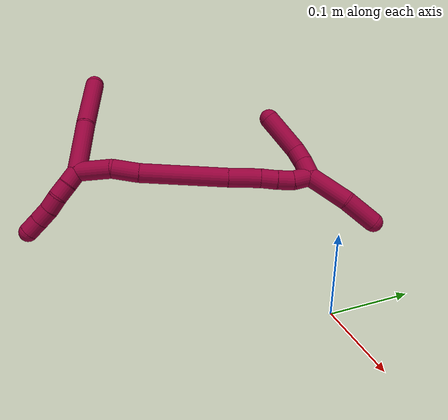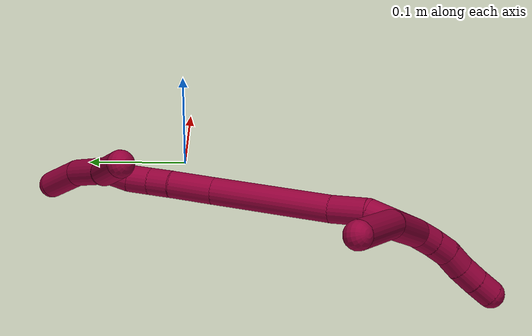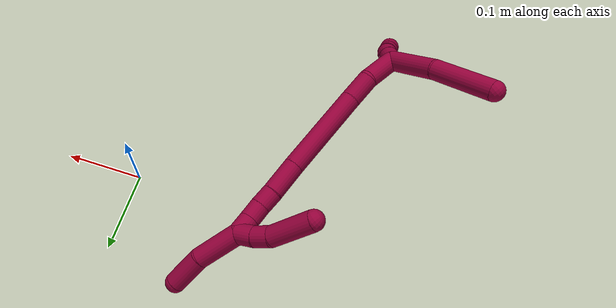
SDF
<sdf version="1.7">
 <world name="default">
  <model name="8">
   <static>0</static>
   <link name="8">
    <collision name="collision-cylinder-e_1_2_8">
     <pose>-0.002933 0.030892 0.017082 -1.06569 -0.082911 0.048914</pose>
     <geometry><cylinder><radius>0.0125</radius><length>0.070843</length></cylinder></geometry>
     <surface>
      <friction><ode><mu>1.16</mu><mu2>1.16</mu2><slip1>0</slip1><slip2>0</slip2></ode></friction>
      <contact><ode><kp>1e+06</kp><kd>1</kd><max_vel>0</max_vel><min_depth>0.001</min_depth></ode></contact>
     </surface>
    </collision>
    <visual name="visual-cylinder-e_1_2_8">
     <pose>-0.002933 0.030892 0.017082 -1.06569 -0.082911 0.048914</pose>
     <geometry><cylinder><radius>0.0125</radius><length>0.070843</length></cylinder></geometry>
     <material><ambient>0.584314 0 0.227451 1</ambient></material>
    </visual>
    <collision name="collision-cylinder-e_2_8_6">
     <pose>-0.017527 0.095219 0.051842 -1.08441 -0.299032 0.181005</pose>
     <geometry><cylinder><radius>0.0125</radius><length>0.079157</length></cylinder></geometry>
     <surface>
      <friction><ode><mu>1.16</mu><mu2>1.16</mu2><slip1>0</slip1><slip2>0</slip2></ode></friction>
      <contact><ode><kp>1e+06</kp><kd>1</kd><max_vel>0</max_vel><min_depth>0.001</min_depth></ode></contact>
     </surface>
    </collision>
    <visual name="visual-cylinder-e_2_8_6">
     <pose>-0.017527 0.095219 0.051842 -1.08441 -0.299032 0.181005</pose>
     <geometry><cylinder><radius>0.0125</radius><length>0.079157</length></cylinder></geometry>
     <material><ambient>0.584314 0 0.227451 1</ambient></material>
    </visual>
    <collision name="collision-cylinder-e_1_2_9">
     <pose>-0.002421 -0.009701 -0.000162 1.58754 -0.24453 -0.248618</pose>
     <geometry><cylinder><radius>0.0125</radius><length>0.02</length></cylinder></geometry>
     <surface>
      <friction><ode><mu>1.16</mu><mu2>1.16</mu2><slip1>0</slip1><slip2>0</slip2></ode></friction>
      <contact><ode><kp>1e+06</kp><kd>1</kd><max_vel>0</max_vel><min_depth>0.001</min_depth></ode></contact>
     </surface>
    </collision>
    <visual name="visual-cylinder-e_1_2_9">
     <pose>-0.002421 -0.009701 -0.000162 1.58754 -0.24453 -0.248618</pose>
     <geometry><cylinder><radius>0.0125</radius><length>0.02</length></cylinder></geometry>
     <material><ambient>0.584314 0 0.227451 1</ambient></material>
    </visual>
    <collision name="collision-cylinder-e_2_9_10">
     <pose>-0.008119 -0.028849 -0.000178 1.55529 -0.333819 -0.328774</pose>
     <geometry><cylinder><radius>0.0125</radius><length>0.02</length></cylinder></geometry>
     <surface>
      <friction><ode><mu>1.16</mu><mu2>1.16</mu2><slip1>0</slip1><slip2>0</slip2></ode></friction>
      <contact><ode><kp>1e+06</kp><kd>1</kd><max_vel>0</max_vel><min_depth>0.001</min_depth></ode></contact>
     </surface>
    </collision>
    <visual name="visual-cylinder-e_2_9_10">
     <pose>-0.008119 -0.028849 -0.000178 1.55529 -0.333819 -0.328774</pose>
     <geometry><cylinder><radius>0.0125</radius><length>0.02</length></cylinder></geometry>
     <material><ambient>0.584314 0 0.227451 1</ambient></material>
    </visual>
    <collision name="collision-cylinder-e_3_10_11">
     <pose>-0.01671 -0.046767 -6.8e-05 1.57509 -0.560363 -0.562651</pose>
     <geometry><cylinder><radius>0.0125</radius><length>0.02</length></cylinder></geometry>
     <surface>
      <friction><ode><mu>1.16</mu><mu2>1.16</mu2><slip1>0</slip1><slip2>0</slip2></ode></friction>
      <contact><ode><kp>1e+06</kp><kd>1</kd><max_vel>0</max_vel><min_depth>0.001</min_depth></ode></contact>
     </surface>
    </collision>
    <visual name="visual-cylinder-e_3_10_11">
     <pose>-0.01671 -0.046767 -6.8e-05 1.57509 -0.560363 -0.562651</pose>
     <geometry><cylinder><radius>0.0125</radius><length>0.02</length></cylinder></geometry>
     <material><ambient>0.584314 0 0.227451 1</ambient></material>
    </visual>
    <collision name="collision-cylinder-e_4_11_12">
     <pose>-0.027045 -0.063795 0.001144 1.42589 -0.525908 -0.457367</pose>
     <geometry><cylinder><radius>0.0125</radius><length>0.02</length></cylinder></geometry>
     <surface>
      <friction><ode><mu>1.16</mu><mu2>1.16</mu2><slip1>0</slip1><slip2>0</slip2></ode></friction>
      <contact><ode><kp>1e+06</kp><kd>1</kd><max_vel>0</max_vel><min_depth>0.001</min_depth></ode></contact>
     </surface>
    </collision>
    <visual name="visual-cylinder-e_4_11_12">
     <pose>-0.027045 -0.063795 0.001144 1.42589 -0.525908 -0.457367</pose>
     <geometry><cylinder><radius>0.0125</radius><length>0.02</length></cylinder></geometry>
     <material><ambient>0.584314 0 0.227451 1</ambient></material>
    </visual>
    <collision name="collision-cylinder-e_5_12_5">
     <pose>-0.036792 -0.081056 0.003778 1.41294 -0.492322 -0.422453</pose>
     <geometry><cylinder><radius>0.0125</radius><length>0.02</length></cylinder></geometry>
     <surface>
      <friction><ode><mu>1.16</mu><mu2>1.16</mu2><slip1>0</slip1><slip2>0</slip2></ode></friction>
      <contact><ode><kp>1e+06</kp><kd>1</kd><max_vel>0</max_vel><min_depth>0.001</min_depth></ode></contact>
     </surface>
    </collision>
    <visual name="visual-cylinder-e_5_12_5">
     <pose>-0.036792 -0.081056 0.003778 1.41294 -0.492322 -0.422453</pose>
     <geometry><cylinder><radius>0.0125</radius><length>0.02</length></cylinder></geometry>
     <material><ambient>0.584314 0 0.227451 1</ambient></material>
    </visual>
    <collision name="collision-cylinder-e_1_2_13">
     <pose>0.008941 0.012349 -0.017537 -2.52807 0.394962 -1.12677</pose>
     <geometry><cylinder><radius>0.0125</radius><length>0.046477</length></cylinder></geometry>
     <surface>
      <friction><ode><mu>1.16</mu><mu2>1.16</mu2><slip1>0</slip1><slip2>0</slip2></ode></friction>
      <contact><ode><kp>1e+06</kp><kd>1</kd><max_vel>0</max_vel><min_depth>0.001</min_depth></ode></contact>
     </surface>
    </collision>
    <visual name="visual-cylinder-e_1_2_13">
     <pose>0.008941 0.012349 -0.017537 -2.52807 0.394962 -1.12677</pose>
     <geometry><cylinder><radius>0.0125</radius><length>0.046477</length></cylinder></geometry>
     <material><ambient>0.584314 0 0.227451 1</ambient></material>
    </visual>
    <collision name="collision-cylinder-e_2_13_14">
     <pose>0.019659 0.032531 -0.050468 -2.67093 0.102473 -0.4214</pose>
     <geometry><cylinder><radius>0.0125</radius><length>0.034724</length></cylinder></geometry>
     <surface>
      <friction><ode><mu>1.16</mu><mu2>1.16</mu2><slip1>0</slip1><slip2>0</slip2></ode></friction>
      <contact><ode><kp>1e+06</kp><kd>1</kd><max_vel>0</max_vel><min_depth>0.001</min_depth></ode></contact>
     </surface>
    </collision>
    <visual name="visual-cylinder-e_2_13_14">
     <pose>0.019659 0.032531 -0.050468 -2.67093 0.102473 -0.4214</pose>
     <geometry><cylinder><radius>0.0125</radius><length>0.034724</length></cylinder></geometry>
     <material><ambient>0.584314 0 0.227451 1</ambient></material>
    </visual>
    <collision name="collision-cylinder-e_3_14_15">
     <pose>0.029994 0.070258 -0.112928 -2.57572 0.152315 -0.51333</pose>
     <geometry><cylinder><radius>0.0125</radius><length>0.112824</length></cylinder></geometry>
     <surface>
      <friction><ode><mu>1.16</mu><mu2>1.16</mu2><slip1>0</slip1><slip2>0</slip2></ode></friction>
      <contact><ode><kp>1e+06</kp><kd>1</kd><max_vel>0</max_vel><min_depth>0.001</min_depth></ode></contact>
     </surface>
    </collision>
    <visual name="visual-cylinder-e_3_14_15">
     <pose>0.029994 0.070258 -0.112928 -2.57572 0.152315 -0.51333</pose>
     <geometry><cylinder><radius>0.0125</radius><length>0.112824</length></cylinder></geometry>
     <material><ambient>0.584314 0 0.227451 1</ambient></material>
    </visual>
    <collision name="collision-cylinder-e_4_15_16">
     <pose>0.041657 0.111814 -0.176888 -2.53741 0.150082 -0.473466</pose>
     <geometry><cylinder><radius>0.0125</radius><length>0.041518</length></cylinder></geometry>
     <surface>
      <friction><ode><mu>1.16</mu><mu2>1.16</mu2><slip1>0</slip1><slip2>0</slip2></ode></friction>
      <contact><ode><kp>1e+06</kp><kd>1</kd><max_vel>0</max_vel><min_depth>0.001</min_depth></ode></contact>
     </surface>
    </collision>
    <visual name="visual-cylinder-e_4_15_16">
     <pose>0.041657 0.111814 -0.176888 -2.53741 0.150082 -0.473466</pose>
     <geometry><cylinder><radius>0.0125</radius><length>0.041518</length></cylinder></geometry>
     <material><ambient>0.584314 0 0.227451 1</ambient></material>
    </visual>
    <collision name="collision-cylinder-e_5_16_17">
     <pose>0.046349 0.128642 -0.203007 -2.63106 0.149007 -0.557181</pose>
     <geometry><cylinder><radius>0.0125</radius><length>0.02139</length></cylinder></geometry>
     <surface>
      <friction><ode><mu>1.16</mu><mu2>1.16</mu2><slip1>0</slip1><slip2>0</slip2></ode></friction>
      <contact><ode><kp>1e+06</kp><kd>1</kd><max_vel>0</max_vel><min_depth>0.001</min_depth></ode></contact>
     </surface>
    </collision>
    <visual name="visual-cylinder-e_5_16_17">
     <pose>0.046349 0.128642 -0.203007 -2.63106 0.149007 -0.557181</pose>
     <geometry><cylinder><radius>0.0125</radius><length>0.02139</length></cylinder></geometry>
     <material><ambient>0.584314 0 0.227451 1</ambient></material>
    </visual>
    <collision name="collision-cylinder-e_6_17_18">
     <pose>0.049446 0.139764 -0.221025 -2.54623 0.141208 -0.45311</pose>
     <geometry><cylinder><radius>0.0125</radius><length>0.021445</length></cylinder></geometry>
     <surface>
      <friction><ode><mu>1.16</mu><mu2>1.16</mu2><slip1>0</slip1><slip2>0</slip2></ode></friction>
      <contact><ode><kp>1e+06</kp><kd>1</kd><max_vel>0</max_vel><min_depth>0.001</min_depth></ode></contact>
     </surface>
    </collision>
    <visual name="visual-cylinder-e_6_17_18">
     <pose>0.049446 0.139764 -0.221025 -2.54623 0.141208 -0.45311</pose>
     <geometry><cylinder><radius>0.0125</radius><length>0.021445</length></cylinder></geometry>
     <material><ambient>0.584314 0 0.227451 1</ambient></material>
    </visual>
    <collision name="collision-cylinder-e_7_18_1">
     <pose>0.054099 0.15336 -0.236783 -2.31015 0.295145 -0.649626</pose>
     <geometry><cylinder><radius>0.0125</radius><length>0.021622</length></cylinder></geometry>
     <surface>
      <friction><ode><mu>1.16</mu><mu2>1.16</mu2><slip1>0</slip1><slip2>0</slip2></ode></friction>
      <contact><ode><kp>1e+06</kp><kd>1</kd><max_vel>0</max_vel><min_depth>0.001</min_depth></ode></contact>
     </surface>
    </collision>
    <visual name="visual-cylinder-e_7_18_1">
     <pose>0.054099 0.15336 -0.236783 -2.31015 0.295145 -0.649626</pose>
     <geometry><cylinder><radius>0.0125</radius><length>0.021622</length></cylinder></geometry>
     <material><ambient>0.584314 0 0.227451 1</ambient></material>
    </visual>
    <collision name="collision-cylinder-e_1_1_19">
     <pose>0.054079 0.168459 -0.235431 -0.730601 -0.276049 0.106155</pose>
     <geometry><cylinder><radius>0.0125</radius><length>0.023226</length></cylinder></geometry>
     <surface>
      <friction><ode><mu>1.16</mu><mu2>1.16</mu2><slip1>0</slip1><slip2>0</slip2></ode></friction>
      <contact><ode><kp>1e+06</kp><kd>1</kd><max_vel>0</max_vel><min_depth>0.001</min_depth></ode></contact>
     </surface>
    </collision>
    <visual name="visual-cylinder-e_1_1_19">
     <pose>0.054079 0.168459 -0.235431 -0.730601 -0.276049 0.106155</pose>
     <geometry><cylinder><radius>0.0125</radius><length>0.023226</length></cylinder></geometry>
     <material><ambient>0.584314 0 0.227451 1</ambient></material>
    </visual>
    <collision name="collision-cylinder-e_2_19_20">
     <pose>0.048699 0.18144 -0.218463 -0.568586 -0.212566 0.062328</pose>
     <geometry><cylinder><radius>0.0125</radius><length>0.020995</length></cylinder></geometry>
     <surface>
      <friction><ode><mu>1.16</mu><mu2>1.16</mu2><slip1>0</slip1><slip2>0</slip2></ode></friction>
      <contact><ode><kp>1e+06</kp><kd>1</kd><max_vel>0</max_vel><min_depth>0.001</min_depth></ode></contact>
     </surface>
    </collision>
    <visual name="visual-cylinder-e_2_19_20">
     <pose>0.048699 0.18144 -0.218463 -0.568586 -0.212566 0.062328</pose>
     <geometry><cylinder><radius>0.0125</radius><length>0.020995</length></cylinder></geometry>
     <material><ambient>0.584314 0 0.227451 1</ambient></material>
    </visual>
    <collision name="collision-cylinder-e_3_20_4">
     <pose>0.045062 0.195721 -0.183375 -0.319788 -0.051046 0.008234</pose>
     <geometry><cylinder><radius>0.0125</radius><length>0.05578</length></cylinder></geometry>
     <surface>
      <friction><ode><mu>1.16</mu><mu2>1.16</mu2><slip1>0</slip1><slip2>0</slip2></ode></friction>
      <contact><ode><kp>1e+06</kp><kd>1</kd><max_vel>0</max_vel><min_depth>0.001</min_depth></ode></contact>
     </surface>
    </collision>
    <visual name="visual-cylinder-e_3_20_4">
     <pose>0.045062 0.195721 -0.183375 -0.319788 -0.051046 0.008234</pose>
     <geometry><cylinder><radius>0.0125</radius><length>0.05578</length></cylinder></geometry>
     <material><ambient>0.584314 0 0.227451 1</ambient></material>
    </visual>
    <collision name="collision-cylinder-e_1_1_21">
     <pose>0.059953 0.160683 -0.271308 3.12997 0.098005 2.9058</pose>
     <geometry><cylinder><radius>0.0125</radius><length>0.055379</length></cylinder></geometry>
     <surface>
      <friction><ode><mu>1.16</mu><mu2>1.16</mu2><slip1>0</slip1><slip2>0</slip2></ode></friction>
      <contact><ode><kp>1e+06</kp><kd>1</kd><max_vel>0</max_vel><min_depth>0.001</min_depth></ode></contact>
     </surface>
    </collision>
    <visual name="visual-cylinder-e_1_1_21">
     <pose>0.059953 0.160683 -0.271308 3.12997 0.098005 2.9058</pose>
     <geometry><cylinder><radius>0.0125</radius><length>0.055379</length></cylinder></geometry>
     <material><ambient>0.584314 0 0.227451 1</ambient></material>
    </visual>
    <collision name="collision-cylinder-e_2_21_3">
     <pose>0.059614 0.160738 -0.320961 -3.12461 -0.13708 2.89549</pose>
     <geometry><cylinder><radius>0.0125</radius><length>0.044621</length></cylinder></geometry>
     <surface>
      <friction><ode><mu>1.16</mu><mu2>1.16</mu2><slip1>0</slip1><slip2>0</slip2></ode></friction>
      <contact><ode><kp>1e+06</kp><kd>1</kd><max_vel>0</max_vel><min_depth>0.001</min_depth></ode></contact>
     </surface>
    </collision>
    <visual name="visual-cylinder-e_2_21_3">
     <pose>0.059614 0.160738 -0.320961 -3.12461 -0.13708 2.89549</pose>
     <geometry><cylinder><radius>0.0125</radius><length>0.044621</length></cylinder></geometry>
     <material><ambient>0.584314 0 0.227451 1</ambient></material>
    </visual>
    <collision name="collision-sphere-3">
     <pose>0.056565 0.161113 -0.343059 0 -0 0</pose>
     <geometry><sphere><radius>0.0125</radius></sphere></geometry>
     <surface>
      <friction><ode><mu>1.16</mu><mu2>1.16</mu2><slip1>0</slip1><slip2>0</slip2></ode></friction>
      <contact><ode><kp>1e+06</kp><kd>1</kd><max_vel>0</max_vel><min_depth>0.001</min_depth></ode></contact>
     </surface>
    </collision>
    <visual name="visual-sphere-3">
     <pose>0.056565 0.161113 -0.343059 0 -0 0</pose>
     <geometry><sphere><radius>0.0125</radius></sphere></geometry>
     <material><ambient>0.584314 0 0.227451 1</ambient></material>
    </visual>
    <collision name="collision-sphere-21">
     <pose>0.062663 0.160363 -0.298863 0 -0 0</pose>
     <geometry><sphere><radius>0.0125</radius></sphere></geometry>
     <surface>
      <friction><ode><mu>1.16</mu><mu2>1.16</mu2><slip1>0</slip1><slip2>0</slip2></ode></friction>
      <contact><ode><kp>1e+06</kp><kd>1</kd><max_vel>0</max_vel><min_depth>0.001</min_depth></ode></contact>
     </surface>
    </collision>
    <visual name="visual-sphere-21">
     <pose>0.062663 0.160363 -0.298863 0 -0 0</pose>
     <geometry><sphere><radius>0.0125</radius></sphere></geometry>
     <material><ambient>0.584314 0 0.227451 1</ambient></material>
    </visual>
    <collision name="collision-sphere-4">
     <pose>0.043639 0.204478 -0.156934 0 -0 0</pose>
     <geometry><sphere><radius>0.0125</radius></sphere></geometry>
     <surface>
      <friction><ode><mu>1.16</mu><mu2>1.16</mu2><slip1>0</slip1><slip2>0</slip2></ode></friction>
      <contact><ode><kp>1e+06</kp><kd>1</kd><max_vel>0</max_vel><min_depth>0.001</min_depth></ode></contact>
     </surface>
    </collision>
    <visual name="visual-sphere-4">
     <pose>0.043639 0.204478 -0.156934 0 -0 0</pose>
     <geometry><sphere><radius>0.0125</radius></sphere></geometry>
     <material><ambient>0.584314 0 0.227451 1</ambient></material>
    </visual>
    <collision name="collision-sphere-20">
     <pose>0.046485 0.186965 -0.209817 0 -0 0</pose>
     <geometry><sphere><radius>0.0125</radius></sphere></geometry>
     <surface>
      <friction><ode><mu>1.16</mu><mu2>1.16</mu2><slip1>0</slip1><slip2>0</slip2></ode></friction>
      <contact><ode><kp>1e+06</kp><kd>1</kd><max_vel>0</max_vel><min_depth>0.001</min_depth></ode></contact>
     </surface>
    </collision>
    <visual name="visual-sphere-20">
     <pose>0.046485 0.186965 -0.209817 0 -0 0</pose>
     <geometry><sphere><radius>0.0125</radius></sphere></geometry>
     <material><ambient>0.584314 0 0.227451 1</ambient></material>
    </visual>
    <collision name="collision-sphere-11">
     <pose>-0.022025 -0.055237 -0.000105 0 -0 0</pose>
     <geometry><sphere><radius>0.0125</radius></sphere></geometry>
     <surface>
      <friction><ode><mu>1.16</mu><mu2>1.16</mu2><slip1>0</slip1><slip2>0</slip2></ode></friction>
      <contact><ode><kp>1e+06</kp><kd>1</kd><max_vel>0</max_vel><min_depth>0.001</min_depth></ode></contact>
     </surface>
    </collision>
    <visual name="visual-sphere-11">
     <pose>-0.022025 -0.055237 -0.000105 0 -0 0</pose>
     <geometry><sphere><radius>0.0125</radius></sphere></geometry>
     <material><ambient>0.584314 0 0.227451 1</ambient></material>
    </visual>
    <collision name="collision-sphere-10">
     <pose>-0.011395 -0.038296 -3.2e-05 0 -0 0</pose>
     <geometry><sphere><radius>0.0125</radius></sphere></geometry>
     <surface>
      <friction><ode><mu>1.16</mu><mu2>1.16</mu2><slip1>0</slip1><slip2>0</slip2></ode></friction>
      <contact><ode><kp>1e+06</kp><kd>1</kd><max_vel>0</max_vel><min_depth>0.001</min_depth></ode></contact>
     </surface>
    </collision>
    <visual name="visual-sphere-10">
     <pose>-0.011395 -0.038296 -3.2e-05 0 -0 0</pose>
     <geometry><sphere><radius>0.0125</radius></sphere></geometry>
     <material><ambient>0.584314 0 0.227451 1</ambient></material>
    </visual>
    <collision name="collision-sphere-6">
     <pose>-0.029186 0.128655 0.069522 0 -0 0</pose>
     <geometry><sphere><radius>0.0125</radius></sphere></geometry>
     <surface>
      <friction><ode><mu>1.16</mu><mu2>1.16</mu2><slip1>0</slip1><slip2>0</slip2></ode></friction>
      <contact><ode><kp>1e+06</kp><kd>1</kd><max_vel>0</max_vel><min_depth>0.001</min_depth></ode></contact>
     </surface>
    </collision>
    <visual name="visual-sphere-6">
     <pose>-0.029186 0.128655 0.069522 0 -0 0</pose>
     <geometry><sphere><radius>0.0125</radius></sphere></geometry>
     <material><ambient>0.584314 0 0.227451 1</ambient></material>
    </visual>
    <collision name="collision-sphere-9">
     <pose>-0.004842 -0.019402 -0.000325 0 -0 0</pose>
     <geometry><sphere><radius>0.0125</radius></sphere></geometry>
     <surface>
      <friction><ode><mu>1.16</mu><mu2>1.16</mu2><slip1>0</slip1><slip2>0</slip2></ode></friction>
      <contact><ode><kp>1e+06</kp><kd>1</kd><max_vel>0</max_vel><min_depth>0.001</min_depth></ode></contact>
     </surface>
    </collision>
    <visual name="visual-sphere-9">
     <pose>-0.004842 -0.019402 -0.000325 0 -0 0</pose>
     <geometry><sphere><radius>0.0125</radius></sphere></geometry>
     <material><ambient>0.584314 0 0.227451 1</ambient></material>
    </visual>
    <collision name="collision-sphere-2">
     <geometry><sphere><radius>0.0125</radius></sphere></geometry>
     <surface>
      <friction><ode><mu>1.16</mu><mu2>1.16</mu2><slip1>0</slip1><slip2>0</slip2></ode></friction>
      <contact><ode><kp>1e+06</kp><kd>1</kd><max_vel>0</max_vel><min_depth>0.001</min_depth></ode></contact>
     </surface>
    </collision>
    <visual name="visual-sphere-2">
     <geometry><sphere><radius>0.0125</radius></sphere></geometry>
     <material><ambient>0.584314 0 0.227451 1</ambient></material>
    </visual>
    <collision name="collision-sphere-19">
     <pose>0.050914 0.175915 -0.22711 0 -0 0</pose>
     <geometry><sphere><radius>0.0125</radius></sphere></geometry>
     <surface>
      <friction><ode><mu>1.16</mu><mu2>1.16</mu2><slip1>0</slip1><slip2>0</slip2></ode></friction>
      <contact><ode><kp>1e+06</kp><kd>1</kd><max_vel>0</max_vel><min_depth>0.001</min_depth></ode></contact>
     </surface>
    </collision>
    <visual name="visual-sphere-19">
     <pose>0.050914 0.175915 -0.22711 0 -0 0</pose>
     <geometry><sphere><radius>0.0125</radius></sphere></geometry>
     <material><ambient>0.584314 0 0.227451 1</ambient></material>
    </visual>
    <collision name="collision-sphere-8">
     <pose>-0.005867 0.061783 0.034163 0 -0 0</pose>
     <geometry><sphere><radius>0.0125</radius></sphere></geometry>
     <surface>
      <friction><ode><mu>1.16</mu><mu2>1.16</mu2><slip1>0</slip1><slip2>0</slip2></ode></friction>
      <contact><ode><kp>1e+06</kp><kd>1</kd><max_vel>0</max_vel><min_depth>0.001</min_depth></ode></contact>
     </surface>
    </collision>
    <visual name="visual-sphere-8">
     <pose>-0.005867 0.061783 0.034163 0 -0 0</pose>
     <geometry><sphere><radius>0.0125</radius></sphere></geometry>
     <material><ambient>0.584314 0 0.227451 1</ambient></material>
    </visual>
    <collision name="collision-sphere-12">
     <pose>-0.032065 -0.072353 0.002393 0 -0 0</pose>
     <geometry><sphere><radius>0.0125</radius></sphere></geometry>
     <surface>
      <friction><ode><mu>1.16</mu><mu2>1.16</mu2><slip1>0</slip1><slip2>0</slip2></ode></friction>
      <contact><ode><kp>1e+06</kp><kd>1</kd><max_vel>0</max_vel><min_depth>0.001</min_depth></ode></contact>
     </surface>
    </collision>
    <visual name="visual-sphere-12">
     <pose>-0.032065 -0.072353 0.002393 0 -0 0</pose>
     <geometry><sphere><radius>0.0125</radius></sphere></geometry>
     <material><ambient>0.584314 0 0.227451 1</ambient></material>
    </visual>
    <collision name="collision-sphere-5">
     <pose>-0.041518 -0.089759 0.005164 0 -0 0</pose>
     <geometry><sphere><radius>0.0125</radius></sphere></geometry>
     <surface>
      <friction><ode><mu>1.16</mu><mu2>1.16</mu2><slip1>0</slip1><slip2>0</slip2></ode></friction>
      <contact><ode><kp>1e+06</kp><kd>1</kd><max_vel>0</max_vel><min_depth>0.001</min_depth></ode></contact>
     </surface>
    </collision>
    <visual name="visual-sphere-5">
     <pose>-0.041518 -0.089759 0.005164 0 -0 0</pose>
     <geometry><sphere><radius>0.0125</radius></sphere></geometry>
     <material><ambient>0.584314 0 0.227451 1</ambient></material>
    </visual>
    <collision name="collision-sphere-13">
     <pose>0.017883 0.024699 -0.035075 0 -0 0</pose>
     <geometry><sphere><radius>0.0125</radius></sphere></geometry>
     <surface>
      <friction><ode><mu>1.16</mu><mu2>1.16</mu2><slip1>0</slip1><slip2>0</slip2></ode></friction>
      <contact><ode><kp>1e+06</kp><kd>1</kd><max_vel>0</max_vel><min_depth>0.001</min_depth></ode></contact>
     </surface>
    </collision>
    <visual name="visual-sphere-13">
     <pose>0.017883 0.024699 -0.035075 0 -0 0</pose>
     <geometry><sphere><radius>0.0125</radius></sphere></geometry>
     <material><ambient>0.584314 0 0.227451 1</ambient></material>
    </visual>
    <collision name="collision-sphere-14">
     <pose>0.021435 0.040363 -0.065861 0 -0 0</pose>
     <geometry><sphere><radius>0.0125</radius></sphere></geometry>
     <surface>
      <friction><ode><mu>1.16</mu><mu2>1.16</mu2><slip1>0</slip1><slip2>0</slip2></ode></friction>
      <contact><ode><kp>1e+06</kp><kd>1</kd><max_vel>0</max_vel><min_depth>0.001</min_depth></ode></contact>
     </surface>
    </collision>
    <visual name="visual-sphere-14">
     <pose>0.021435 0.040363 -0.065861 0 -0 0</pose>
     <geometry><sphere><radius>0.0125</radius></sphere></geometry>
     <material><ambient>0.584314 0 0.227451 1</ambient></material>
    </visual>
    <collision name="collision-sphere-15">
     <pose>0.038553 0.100153 -0.159996 0 -0 0</pose>
     <geometry><sphere><radius>0.0125</radius></sphere></geometry>
     <surface>
      <friction><ode><mu>1.16</mu><mu2>1.16</mu2><slip1>0</slip1><slip2>0</slip2></ode></friction>
      <contact><ode><kp>1e+06</kp><kd>1</kd><max_vel>0</max_vel><min_depth>0.001</min_depth></ode></contact>
     </surface>
    </collision>
    <visual name="visual-sphere-15">
     <pose>0.038553 0.100153 -0.159996 0 -0 0</pose>
     <geometry><sphere><radius>0.0125</radius></sphere></geometry>
     <material><ambient>0.584314 0 0.227451 1</ambient></material>
    </visual>
    <collision name="collision-sphere-16">
     <pose>0.044761 0.123474 -0.19378 0 -0 0</pose>
     <geometry><sphere><radius>0.0125</radius></sphere></geometry>
     <surface>
      <friction><ode><mu>1.16</mu><mu2>1.16</mu2><slip1>0</slip1><slip2>0</slip2></ode></friction>
      <contact><ode><kp>1e+06</kp><kd>1</kd><max_vel>0</max_vel><min_depth>0.001</min_depth></ode></contact>
     </surface>
    </collision>
    <visual name="visual-sphere-16">
     <pose>0.044761 0.123474 -0.19378 0 -0 0</pose>
     <geometry><sphere><radius>0.0125</radius></sphere></geometry>
     <material><ambient>0.584314 0 0.227451 1</ambient></material>
    </visual>
    <collision name="collision-sphere-17">
     <pose>0.047937 0.133811 -0.212235 0 -0 0</pose>
     <geometry><sphere><radius>0.0125</radius></sphere></geometry>
     <surface>
      <friction><ode><mu>1.16</mu><mu2>1.16</mu2><slip1>0</slip1><slip2>0</slip2></ode></friction>
      <contact><ode><kp>1e+06</kp><kd>1</kd><max_vel>0</max_vel><min_depth>0.001</min_depth></ode></contact>
     </surface>
    </collision>
    <visual name="visual-sphere-17">
     <pose>0.047937 0.133811 -0.212235 0 -0 0</pose>
     <geometry><sphere><radius>0.0125</radius></sphere></geometry>
     <material><ambient>0.584314 0 0.227451 1</ambient></material>
    </visual>
    <collision name="collision-sphere-18">
     <pose>0.050955 0.145718 -0.229814 0 -0 0</pose>
     <geometry><sphere><radius>0.0125</radius></sphere></geometry>
     <surface>
      <friction><ode><mu>1.16</mu><mu2>1.16</mu2><slip1>0</slip1><slip2>0</slip2></ode></friction>
      <contact><ode><kp>1e+06</kp><kd>1</kd><max_vel>0</max_vel><min_depth>0.001</min_depth></ode></contact>
     </surface>
    </collision>
    <visual name="visual-sphere-18">
     <pose>0.050955 0.145718 -0.229814 0 -0 0</pose>
     <geometry><sphere><radius>0.0125</radius></sphere></geometry>
     <material><ambient>0.584314 0 0.227451 1</ambient></material>
    </visual>
    <collision name="collision-sphere-1">
     <pose>0.057244 0.161003 -0.243753 0 -0 0</pose>
     <geometry><sphere><radius>0.0125</radius></sphere></geometry>
     <surface>
      <friction><ode><mu>1.16</mu><mu2>1.16</mu2><slip1>0</slip1><slip2>0</slip2></ode></friction>
      <contact><ode><kp>1e+06</kp><kd>1</kd><max_vel>0</max_vel><min_depth>0.001</min_depth></ode></contact>
     </surface>
    </collision>
    <visual name="visual-sphere-1">
     <pose>0.057244 0.161003 -0.243753 0 -0 0</pose>
     <geometry><sphere><radius>0.0125</radius></sphere></geometry>
     <material><ambient>0.584314 0 0.227451 1</ambient></material>
    </visual>
    <inertial>
     <pose>0.022385 0.084226 -0.108107 0 -0 0</pose>
     <mass>0.75</mass>
     <inertia>
      <ixx>0.000136</ixx>
      <ixy>0</ixy>
      <ixz>0</ixz>
      <iyy>-6.1e-05</iyy>
      <iyz>0</iyz>
      <izz>-0.000166</izz>
     </inertia>
    </inertial>
   </link>
   <pose>-0.270993 -0.217791 0.094287 0.743863 -0.811074 -0.06867</pose>
  </model>
 </world>
</sdf>
